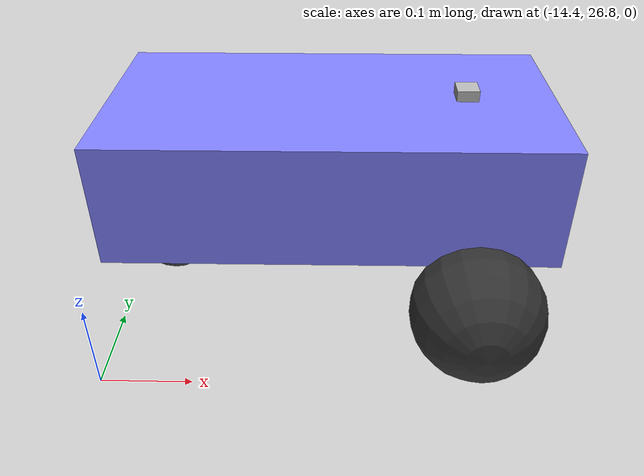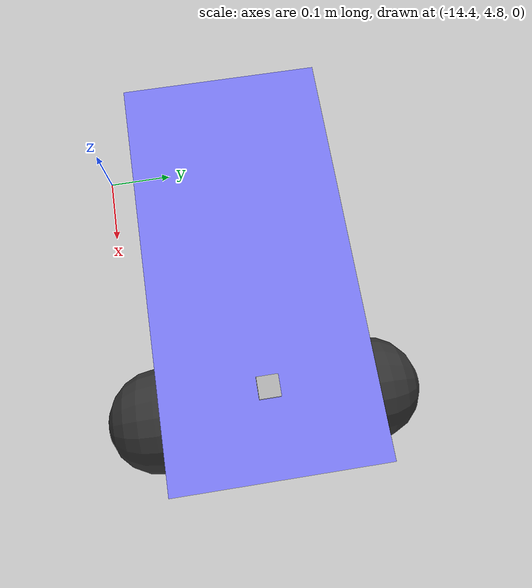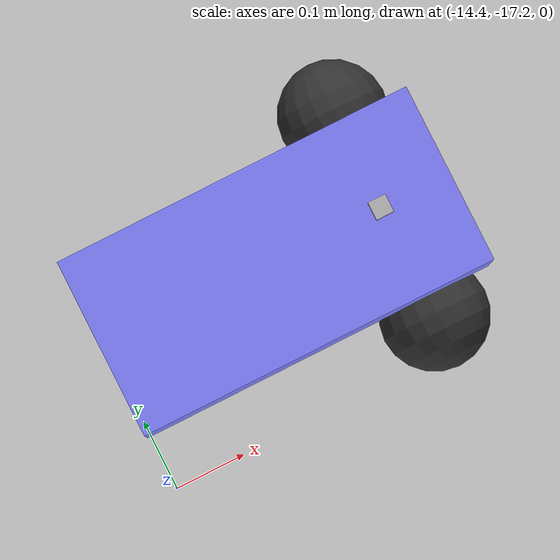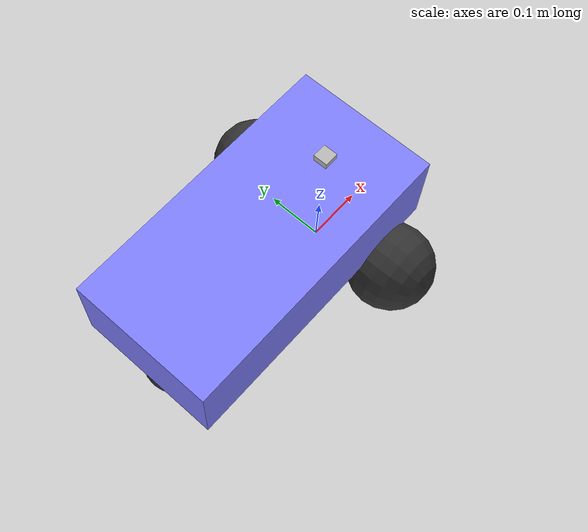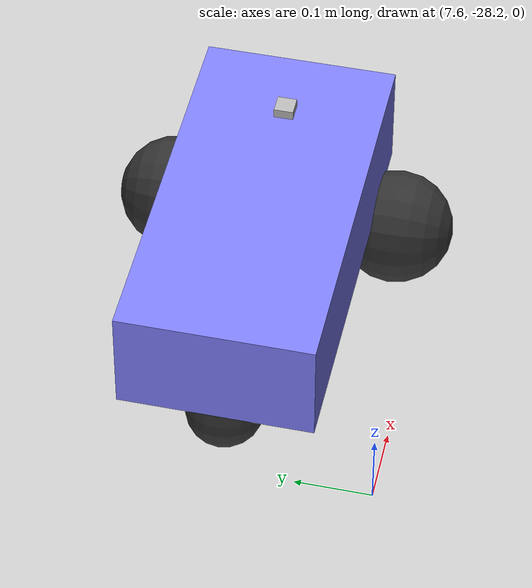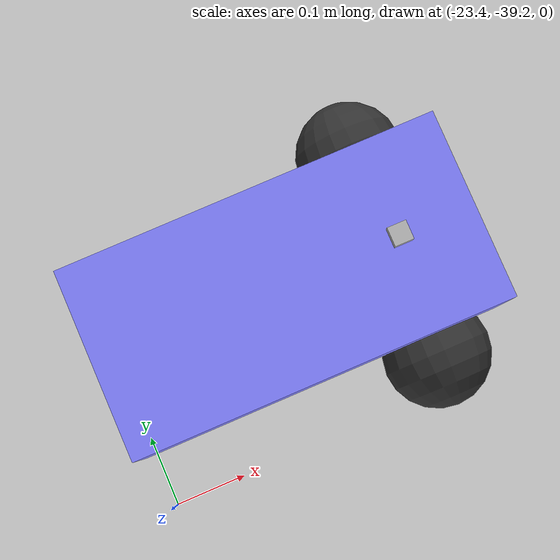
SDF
<sdf version="1.7">
 <world name="CMP_department">
  <physics name="1ms" type="ignored">
   <max_step_size>0.001</max_step_size>
   <real_time_factor>1.0</real_time_factor>
  </physics>
  <plugin filename="libignition-gazebo-physics-system.so" name="ignition::gazebo::systems::Physics"/>
  <plugin filename="libignition-gazebo-user-commands-system.so" name="ignition::gazebo::systems::UserCommands"/>
  <plugin filename="libignition-gazebo-scene-broadcaster-system.so" name="ignition::gazebo::systems::SceneBroadcaster"/>
  <plugin filename="libignition-gazebo-sensors-system.so" name="ignition::gazebo::systems::Sensors">
   <render_engine>ogre</render_engine>
  </plugin>
  <plugin filename="libignition-gazebo-contact-system.so" name="ignition::gazebo::systems::Contact"/>
  <scene>
   <ambient>1 1 1 1</ambient>
   <background>0.3 0.7 0.9 1</background>
   <shadows>0</shadows>
   <grid>false</grid>
  </scene>
  <light type="directional" name="sun">
   <cast_shadows>false</cast_shadows>
   <pose>0 0 100 0 0 0</pose>
   <diffuse>0.8 0.8 0.8 1</diffuse>
   <specular>0.2 0.2 0.2 1</specular>
   <attenuation>
    <range>1000</range>
    <constant>0.9</constant>
    <linear>0.01</linear>
    <quadratic>0.001</quadratic>
   </attenuation>
   <direction>-0.5 0.1 -0.9</direction>
  </light>
  <model name="ground_plane">
   <static>true</static>
   <link name="link">
    <collision name="collision"><geometry><plane><normal>0 0 1</normal></plane></geometry></collision>
    <visual name="visual">
     <geometry><plane><normal>0 0 1</normal><size>200 200</size></plane></geometry>
     <material>
      <ambient>0.8 0.8 0.8 1</ambient>
      <diffuse>0.8 0.8 0.8 1</diffuse>
      <specular>0.8 0.8 0.8 1</specular>
     </material>
    </visual>
   </link>
  </model>
  <include>
   <name>robots</name>
   <uri>./models/sub_worlds/robots.sdf</uri>
   <pose relative_to="maincorridor">0 0 0 0 0 0</pose>
  </include>
 </world>
</sdf>

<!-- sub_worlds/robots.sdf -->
<sdf version="1.6">

  <model name="robots">

    <!-- Corridor robot -->
    <include>
      <name>robot1</name>
      <uri>models/robots/robot1.sdf</uri>
      <pose>0 0 0 0 0 0 </pose>
    </include>
    <!-- Fourth year robot -->
    <include>
      <name>robot2</name>
      <uri>models/robots/robot2.sdf</uri>
      <pose>-14 27 0 0 0 0 </pose>
    </include>
    <!-- Third year robot -->
    <include>
      <name>robot3</name>
      <uri>models/robots/robot3.sdf</uri>
      <pose>-14 5 0 0 0 0 </pose>
    </include>
    <!-- Second year robot -->
    <include>
      <name>robot4</name>
      <uri>models/robots/robot4.sdf</uri>
      <pose>-14 -17 0 0 0 0 </pose>
    </include>
    <!-- First year robot -->
    <include>
      <name>robot5</name>
      <uri>models/robots/robot5.sdf</uri>
      <pose>-23 -39 0 0 0 0 </pose>
    </include>

    <include>
      <name>robot6</name>
      <uri>models/robots/robot6.sdf</uri>
      <pose>10 -44 0 0 0 0 </pose>
    </include>

    <include>
      <name>robot7</name>
      <uri>models/robots/robot7.sdf</uri>
      <pose>8 -28 0 0 0 0 </pose>
    </include>

    <include>
      <name>robot8</name>
      <uri>models/robots/robot8.sdf</uri>
      <pose>10 -10 0 0 0 0 </pose>
    </include>

    <include>
      <name>robot9</name>
      <uri>models/robots/robot9.sdf</uri>
      <pose>6 10 0 0 0 0 </pose>
    </include>

    <include>
      <name>robot10</name>
      <uri>models/robots/robot10.sdf</uri>
      <pose>8 20 0 0 0 0 </pose>
    </include>

  </model>
</sdf>

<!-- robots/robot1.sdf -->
<!--
  You can echo lidar messages using:
    gz topic -e -t /lidar
-->
<sdf version="1.9">
    <model name='robot1'>
      <pose>-4 0 0.325 0 0 0.0</pose>
      <link name='chassis'>
        <pose>-0.151427 -0 0.175 0 -0 0</pose>
        <inertial>
          <mass>1.14395</mass>
          <inertia>
            <ixx>0.126164</ixx>
            <ixy>0</ixy>
            <ixz>0</ixz>
            <iyy>0.416519</iyy>
            <iyz>0</iyz>
            <izz>0.481014</izz>
          </inertia>
        </inertial>
        <visual name='visual'>
          <geometry>
            <box>
              <size>0.503 0.25 0.143</size>
            </box>
          </geometry>
          <material>
            <ambient>0.5 0.5 1.0 1</ambient>
            <diffuse>0.5 0.5 1.0 1</diffuse>
            <specular>0.0 0.0 1.0 1</specular>
          </material>
        </visual>
        <collision name='collision'>
          <geometry>
            <box>
              <size>0.503 0.25 0.143</size>
            </box>
          </geometry>
        </collision>
      </link>

      <link name="lidar_link">
        <pose>0 0 0.2465 0 0 0</pose>
        <inertial>
          <mass>0.1</mass>
          <inertia>
            <ixx>0.000166667</ixx>
            <iyy>0.000166667</iyy>
            <izz>0.000166667</izz>
          </inertia>
        </inertial>
        <collision name="collision">
          <geometry>
            <box>
              <size>0.025 0.025 0.025</size>
            </box>
          </geometry>
        </collision>
        <visual name="visual">
          <geometry>
            <box>
              <size>0.025 0.025 0.025</size>
            </box>
          </geometry>
        </visual>
        <sensor name='gpu_lidar' type='gpu_lidar'>
        <pose>0 0 0 0 0 0</pose>
          <topic>/model/robot1/lidar2</topic>
          <update_rate>10</update_rate>
          <lidar>
            <scan>
              <horizontal>
                <samples>640</samples>
                <resolution>1</resolution>
                <min_angle>-1.396263</min_angle>
                <max_angle>1.396263</max_angle>
              </horizontal>
              <vertical>
                <samples>1</samples>
                <resolution>1</resolution>
                <min_angle>0.0</min_angle>
                <max_angle>0.0</max_angle>
              </vertical>
            </scan>
            <range>
              <min>0.08</min>
              <max>10.0</max>
              <resolution>0.01</resolution>
            </range>
          </lidar>
          <visualize>true</visualize>
        </sensor>
      </link>

      <link name='left_wheel'>
        <pose>0.01 0.15 0.06 -1.5707 0 0</pose>
        <inertial>
          <mass>2</mass>
          <inertia>
            <ixx>0.145833</ixx>
            <ixy>0</ixy>
            <ixz>0</ixz>
            <iyy>0.145833</iyy>
            <iyz>0</iyz>
            <izz>0.125</izz>
          </inertia>
        </inertial>
        <visual name='visual'>
          <geometry>
            <sphere>
              <radius>0.075</radius>
            </sphere>
          </geometry>
          <material>
            <ambient>0.2 0.2 0.2 1</ambient>
            <diffuse>0.2 0.2 0.2 1</diffuse>
            <specular>0.2 0.2 0.2 1</specular>
          </material>
        </visual>
        <collision name='collision'>
          <geometry>
            <sphere>
              <radius>0.075</radius>
            </sphere>
          </geometry>
        </collision>
      </link>

      <link name='right_wheel'>
        <pose>0.01 -0.15 0.06 -1.5707 0 0</pose>
        <inertial>
          <mass>2</mass>
          <inertia>
            <ixx>0.145833</ixx>
            <ixy>0</ixy>
            <ixz>0</ixz>
            <iyy>0.145833</iyy>
            <iyz>0</iyz>
            <izz>0.125</izz>
          </inertia>
        </inertial>
        <visual name='visual'>
          <geometry>
            <sphere>
              <radius>0.075</radius>
            </sphere>
          </geometry>
          <material>
            <ambient>0.2 0.2 0.2 1</ambient>
            <diffuse>0.2 0.2 0.2 1</diffuse>
            <specular>0.2 0.2 0.2 1</specular>
          </material>
        </visual>
        <collision name='collision'>
          <geometry>
            <sphere>
              <radius>0.075</radius>
            </sphere>
          </geometry>
        </collision>
      </link>

      <link name='caster'>
        <pose>-0.35 0 0.06 -1.5707 0 0 </pose>
        <inertial>
          <mass>1</mass>
          <inertia>
            <ixx>0.1</ixx>
            <ixy>0</ixy>
            <ixz>0</ixz>
            <iyy>0.1</iyy>
            <iyz>0</iyz>
            <izz>0.1</izz>
          </inertia>
        </inertial>
        <visual name='visual'>
          <geometry>
            <sphere>
              <radius>0.05</radius>
            </sphere>
          </geometry>
          <material>
            <ambient>0.2 0.2 0.2 1</ambient>
            <diffuse>0.2 0.2 0.2 1</diffuse>
            <specular>0.2 0.2 0.2 1</specular>
          </material>
        </visual>
        <collision name='collision'>
          <geometry>
            <sphere>
              <radius>0.05</radius>
            </sphere>
          </geometry>
        </collision>
      </link>

      <joint name='lidar_sensor_joint' type='fixed'>
        <parent>chassis</parent>
        <child>lidar_link</child>
      </joint>

      <joint name='left_wheel_joint' type='revolute'>
        <parent>chassis</parent>
        <child>left_wheel</child>
        <axis>
          <xyz>0 0 1</xyz>
          <limit>
            <lower>-1.79769e+308</lower>
            <upper>1.79769e+308</upper>
          </limit>
        </axis>
      </joint>

      <joint name='right_wheel_joint' type='revolute'>
        <parent>chassis</parent>
        <child>right_wheel</child>
        <axis>
          <xyz>0 0 1</xyz>
          <limit>
            <lower>-1.79769e+308</lower>
            <upper>1.79769e+308</upper>
          </limit>
        </axis>
      </joint>

      <joint name='caster_wheel' type='ball'>
        <parent>chassis</parent>
        <child>caster</child>
      </joint>

      <plugin
        filename="libignition-gazebo-diff-drive-system.so"
        name="ignition::gazebo::systems::DiffDrive">
        <left_joint>left_wheel_joint</left_joint>
        <right_joint>right_wheel_joint</right_joint>
        <wheel_separation>0.3</wheel_separation>
        <wheel_radius>0.075</wheel_radius>
        <odom_publish_frequency>1</odom_publish_frequency>
        <topic>/model/robot1/cmd_vel</topic>
      </plugin>
    </model>
</sdf>

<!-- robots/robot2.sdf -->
<!--
  You can echo lidar messages using:
    gz topic -e -t /lidar
-->
<sdf version="1.9">
    <model name='robot2'>
      <pose>-4 0 0.325 0 0 0.0</pose>
      <link name='chassis'>
        <pose>-0.151427 -0 0.175 0 -0 0</pose>
        <inertial>
          <mass>1.14395</mass>
          <inertia>
            <ixx>0.126164</ixx>
            <ixy>0</ixy>
            <ixz>0</ixz>
            <iyy>0.416519</iyy>
            <iyz>0</iyz>
            <izz>0.481014</izz>
          </inertia>
        </inertial>
        <visual name='visual'>
          <geometry>
            <box>
              <size>0.503 0.25 0.143</size>
            </box>
          </geometry>
          <material>
            <ambient>0.5 0.5 1.0 1</ambient>
            <diffuse>0.5 0.5 1.0 1</diffuse>
            <specular>0.0 0.0 1.0 1</specular>
          </material>
        </visual>
        <collision name='collision'>
          <geometry>
            <box>
              <size>0.503 0.25 0.143</size>
            </box>
          </geometry>
        </collision>
      </link>

      <link name="lidar_link">
        <pose>0 0 0.2465 0 0 0</pose>
        <inertial>
          <mass>0.1</mass>
          <inertia>
            <ixx>0.000166667</ixx>
            <iyy>0.000166667</iyy>
            <izz>0.000166667</izz>
          </inertia>
        </inertial>
        <collision name="collision">
          <geometry>
            <box>
              <size>0.025 0.025 0.025</size>
            </box>
          </geometry>
        </collision>
        <visual name="visual">
          <geometry>
            <box>
              <size>0.025 0.025 0.025</size>
            </box>
          </geometry>
        </visual>
        <sensor name='gpu_lidar' type='gpu_lidar'>
        <pose>0 0 0 0 0 0</pose>
          <topic>/model/robot2/lidar2</topic>
          <update_rate>10</update_rate>
          <lidar>
            <scan>
              <horizontal>
                <samples>640</samples>
                <resolution>1</resolution>
                <min_angle>-1.396263</min_angle>
                <max_angle>1.396263</max_angle>
              </horizontal>
              <vertical>
                <samples>1</samples>
                <resolution>1</resolution>
                <min_angle>0.0</min_angle>
                <max_angle>0.0</max_angle>
              </vertical>
            </scan>
            <range>
              <min>0.08</min>
              <max>10.0</max>
              <resolution>0.01</resolution>
            </range>
          </lidar>
          <visualize>true</visualize>
        </sensor>
      </link>

      <link name='left_wheel'>
        <pose>0.01 0.15 0.06 -1.5707 0 0</pose>
        <inertial>
          <mass>2</mass>
          <inertia>
            <ixx>0.145833</ixx>
            <ixy>0</ixy>
            <ixz>0</ixz>
            <iyy>0.145833</iyy>
            <iyz>0</iyz>
            <izz>0.125</izz>
          </inertia>
        </inertial>
        <visual name='visual'>
          <geometry>
            <sphere>
              <radius>0.075</radius>
            </sphere>
          </geometry>
          <material>
            <ambient>0.2 0.2 0.2 1</ambient>
            <diffuse>0.2 0.2 0.2 1</diffuse>
            <specular>0.2 0.2 0.2 1</specular>
          </material>
        </visual>
        <collision name='collision'>
          <geometry>
            <sphere>
              <radius>0.075</radius>
            </sphere>
          </geometry>
        </collision>
      </link>

      <link name='right_wheel'>
        <pose>0.01 -0.15 0.06 -1.5707 0 0</pose>
        <inertial>
          <mass>2</mass>
          <inertia>
            <ixx>0.145833</ixx>
            <ixy>0</ixy>
            <ixz>0</ixz>
            <iyy>0.145833</iyy>
            <iyz>0</iyz>
            <izz>0.125</izz>
          </inertia>
        </inertial>
        <visual name='visual'>
          <geometry>
            <sphere>
              <radius>0.075</radius>
            </sphere>
          </geometry>
          <material>
            <ambient>0.2 0.2 0.2 1</ambient>
            <diffuse>0.2 0.2 0.2 1</diffuse>
            <specular>0.2 0.2 0.2 1</specular>
          </material>
        </visual>
        <collision name='collision'>
          <geometry>
            <sphere>
              <radius>0.075</radius>
            </sphere>
          </geometry>
        </collision>
      </link>

      <link name='caster'>
        <pose>-0.35 0 0.06 -1.5707 0 0 </pose>
        <inertial>
          <mass>1</mass>
          <inertia>
            <ixx>0.1</ixx>
            <ixy>0</ixy>
            <ixz>0</ixz>
            <iyy>0.1</iyy>
            <iyz>0</iyz>
            <izz>0.1</izz>
          </inertia>
        </inertial>
        <visual name='visual'>
          <geometry>
            <sphere>
              <radius>0.05</radius>
            </sphere>
          </geometry>
          <material>
            <ambient>0.2 0.2 0.2 1</ambient>
            <diffuse>0.2 0.2 0.2 1</diffuse>
            <specular>0.2 0.2 0.2 1</specular>
          </material>
        </visual>
        <collision name='collision'>
          <geometry>
            <sphere>
              <radius>0.05</radius>
            </sphere>
          </geometry>
        </collision>
      </link>

      <joint name='lidar_sensor_joint' type='fixed'>
        <parent>chassis</parent>
        <child>lidar_link</child>
      </joint>

      <joint name='left_wheel_joint' type='revolute'>
        <parent>chassis</parent>
        <child>left_wheel</child>
        <axis>
          <xyz>0 0 1</xyz>
          <limit>
            <lower>-1.79769e+308</lower>
            <upper>1.79769e+308</upper>
          </limit>
        </axis>
      </joint>

      <joint name='right_wheel_joint' type='revolute'>
        <parent>chassis</parent>
        <child>right_wheel</child>
        <axis>
          <xyz>0 0 1</xyz>
          <limit>
            <lower>-1.79769e+308</lower>
            <upper>1.79769e+308</upper>
          </limit>
        </axis>
      </joint>

      <joint name='caster_wheel' type='ball'>
        <parent>chassis</parent>
        <child>caster</child>
      </joint>

      <plugin
        filename="libignition-gazebo-diff-drive-system.so"
        name="ignition::gazebo::systems::DiffDrive">
        <left_joint>left_wheel_joint</left_joint>
        <right_joint>right_wheel_joint</right_joint>
        <wheel_separation>0.3</wheel_separation>
        <wheel_radius>0.075</wheel_radius>
        <odom_publish_frequency>1</odom_publish_frequency>
        <topic>/model/robot2/cmd_vel</topic>
      </plugin>
    </model>
</sdf>

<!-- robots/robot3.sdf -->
<!--
  You can echo lidar messages using:
    gz topic -e -t /lidar
-->
<sdf version="1.9">
    <model name='robot3'>
      <pose>-4 0 0.325 0 0 0.0</pose>
      <link name='chassis'>
        <pose>-0.151427 -0 0.175 0 -0 0</pose>
        <inertial>
          <mass>1.14395</mass>
          <inertia>
            <ixx>0.126164</ixx>
            <ixy>0</ixy>
            <ixz>0</ixz>
            <iyy>0.416519</iyy>
            <iyz>0</iyz>
            <izz>0.481014</izz>
          </inertia>
        </inertial>
        <visual name='visual'>
          <geometry>
            <box>
              <size>0.503 0.25 0.143</size>
            </box>
          </geometry>
          <material>
            <ambient>0.5 0.5 1.0 1</ambient>
            <diffuse>0.5 0.5 1.0 1</diffuse>
            <specular>0.0 0.0 1.0 1</specular>
          </material>
        </visual>
        <collision name='collision'>
          <geometry>
            <box>
              <size>0.503 0.25 0.143</size>
            </box>
          </geometry>
        </collision>
      </link>

      <link name="lidar_link">
        <pose>0 0 0.2465 0 0 0</pose>
        <inertial>
          <mass>0.1</mass>
          <inertia>
            <ixx>0.000166667</ixx>
            <iyy>0.000166667</iyy>
            <izz>0.000166667</izz>
          </inertia>
        </inertial>
        <collision name="collision">
          <geometry>
            <box>
              <size>0.025 0.025 0.025</size>
            </box>
          </geometry>
        </collision>
        <visual name="visual">
          <geometry>
            <box>
              <size>0.025 0.025 0.025</size>
            </box>
          </geometry>
        </visual>
        <sensor name='gpu_lidar' type='gpu_lidar'>
        <pose>0 0 0 0 0 0</pose>
          <topic>/model/robot3/lidar2</topic>
          <update_rate>10</update_rate>
          <lidar>
            <scan>
              <horizontal>
                <samples>640</samples>
                <resolution>1</resolution>
                <min_angle>-1.396263</min_angle>
                <max_angle>1.396263</max_angle>
              </horizontal>
              <vertical>
                <samples>1</samples>
                <resolution>1</resolution>
                <min_angle>0.0</min_angle>
                <max_angle>0.0</max_angle>
              </vertical>
              <!-- add guassian noise-->
              <noise>
                <type>gaussian</type>
                <mean>0.0</mean>
                <stddev>0.01</stddev>
              </noise>
            </scan>
            <range>
              <min>0.08</min>
              <max>10.0</max>
              <resolution>0.01</resolution>
            </range>
          </lidar>
          <always_on>1</always_on>
          <visualize>true</visualize>
        </sensor>
      </link>

      <link name='left_wheel'>
        <pose>0.01 0.15 0.06 -1.5707 0 0</pose>
        <inertial>
          <mass>2</mass>
          <inertia>
            <ixx>0.145833</ixx>
            <ixy>0</ixy>
            <ixz>0</ixz>
            <iyy>0.145833</iyy>
            <iyz>0</iyz>
            <izz>0.125</izz>
          </inertia>
        </inertial>
        <visual name='visual'>
          <geometry>
            <sphere>
              <radius>0.075</radius>
            </sphere>
          </geometry>
          <material>
            <ambient>0.2 0.2 0.2 1</ambient>
            <diffuse>0.2 0.2 0.2 1</diffuse>
            <specular>0.2 0.2 0.2 1</specular>
          </material>
        </visual>
        <collision name='collision'>
          <geometry>
            <sphere>
              <radius>0.075</radius>
            </sphere>
          </geometry>
        </collision>
      </link>

      <link name='right_wheel'>
        <pose>0.01 -0.15 0.06 -1.5707 0 0</pose>
        <inertial>
          <mass>2</mass>
          <inertia>
            <ixx>0.145833</ixx>
            <ixy>0</ixy>
            <ixz>0</ixz>
            <iyy>0.145833</iyy>
            <iyz>0</iyz>
            <izz>0.125</izz>
          </inertia>
        </inertial>
        <visual name='visual'>
          <geometry>
            <sphere>
              <radius>0.075</radius>
            </sphere>
          </geometry>
          <material>
            <ambient>0.2 0.2 0.2 1</ambient>
            <diffuse>0.2 0.2 0.2 1</diffuse>
            <specular>0.2 0.2 0.2 1</specular>
          </material>
        </visual>
        <collision name='collision'>
          <geometry>
            <sphere>
              <radius>0.075</radius>
            </sphere>
          </geometry>
        </collision>
      </link>

      <link name='caster'>
        <pose>-0.35 0 0.06 -1.5707 0 0 </pose>
        <inertial>
          <mass>1</mass>
          <inertia>
            <ixx>0.1</ixx>
            <ixy>0</ixy>
            <ixz>0</ixz>
            <iyy>0.1</iyy>
            <iyz>0</iyz>
            <izz>0.1</izz>
          </inertia>
        </inertial>
        <visual name='visual'>
          <geometry>
            <sphere>
              <radius>0.05</radius>
            </sphere>
          </geometry>
          <material>
            <ambient>0.2 0.2 0.2 1</ambient>
            <diffuse>0.2 0.2 0.2 1</diffuse>
            <specular>0.2 0.2 0.2 1</specular>
          </material>
        </visual>
        <collision name='collision'>
          <geometry>
            <sphere>
              <radius>0.05</radius>
            </sphere>
          </geometry>
        </collision>
      </link>

      <joint name='lidar_sensor_joint' type='fixed'>
        <parent>chassis</parent>
        <child>lidar_link</child>
      </joint>

      <joint name='left_wheel_joint' type='revolute'>
        <parent>chassis</parent>
        <child>left_wheel</child>
        <axis>
          <xyz>0 0 1</xyz>
          <limit>
            <lower>-1.79769e+308</lower>
            <upper>1.79769e+308</upper>
          </limit>
        </axis>
      </joint>

      <joint name='right_wheel_joint' type='revolute'>
        <parent>chassis</parent>
        <child>right_wheel</child>
        <axis>
          <xyz>0 0 1</xyz>
          <limit>
            <lower>-1.79769e+308</lower>
            <upper>1.79769e+308</upper>
          </limit>
        </axis>
      </joint>

      <joint name='caster_wheel' type='ball'>
        <parent>chassis</parent>
        <child>caster</child>
      </joint>

      <plugin
        filename="libignition-gazebo-diff-drive-system.so"
        name="ignition::gazebo::systems::DiffDrive">
        <left_joint>left_wheel_joint</left_joint>
        <right_joint>right_wheel_joint</right_joint>
        <wheel_separation>0.3</wheel_separation>
        <wheel_radius>0.075</wheel_radius>
        <odom_publish_frequency>1</odom_publish_frequency>
        <topic>/model/robot3/cmd_vel</topic>
      </plugin>
    </model>
</sdf>

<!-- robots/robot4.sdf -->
<!--
  You can echo lidar messages using:
    gz topic -e -t /lidar
-->
<sdf version="1.9">
    <model name='robot4'>
      <pose>-4 0 0.325 0 0 0.0</pose>
      <link name='chassis'>
        <pose>-0.151427 -0 0.175 0 -0 0</pose>
        <inertial>
          <mass>1.14395</mass>
          <inertia>
            <ixx>0.126164</ixx>
            <ixy>0</ixy>
            <ixz>0</ixz>
            <iyy>0.416519</iyy>
            <iyz>0</iyz>
            <izz>0.481014</izz>
          </inertia>
        </inertial>
        <visual name='visual'>
          <geometry>
            <box>
              <size>0.503 0.25 0.143</size>
            </box>
          </geometry>
          <material>
            <ambient>0.5 0.5 1.0 1</ambient>
            <diffuse>0.5 0.5 1.0 1</diffuse>
            <specular>0.0 0.0 1.0 1</specular>
          </material>
        </visual>
        <collision name='collision'>
          <geometry>
            <box>
              <size>0.503 0.25 0.143</size>
            </box>
          </geometry>
        </collision>
      </link>

      <link name="lidar_link">
        <pose>0 0 0.2465 0 0 0</pose>
        <inertial>
          <mass>0.1</mass>
          <inertia>
            <ixx>0.000166667</ixx>
            <iyy>0.000166667</iyy>
            <izz>0.000166667</izz>
          </inertia>
        </inertial>
        <collision name="collision">
          <geometry>
            <box>
              <size>0.025 0.025 0.025</size>
            </box>
          </geometry>
        </collision>
        <visual name="visual">
          <geometry>
            <box>
              <size>0.025 0.025 0.025</size>
            </box>
          </geometry>
        </visual>
        <sensor name='gpu_lidar' type='gpu_lidar'>
        <pose>0 0 0 0 0 0</pose>
          <topic>/model/robot4/lidar2</topic>
          <update_rate>10</update_rate>
          <lidar>
            <scan>
              <horizontal>
                <samples>640</samples>
                <resolution>1</resolution>
                <min_angle>-1.396263</min_angle>
                <max_angle>1.396263</max_angle>
              </horizontal>
              <vertical>
                <samples>1</samples>
                <resolution>1</resolution>
                <min_angle>0.0</min_angle>
                <max_angle>0.0</max_angle>
              </vertical>
              <!-- add guassian noise-->
              <noise>
                <type>gaussian</type>
                <mean>0.0</mean>
                <stddev>0.01</stddev>
              </noise>
            </scan>
            <range>
              <min>0.08</min>
              <max>10.0</max>
              <resolution>0.01</resolution>
            </range>
          </lidar>
          <always_on>1</always_on>
          <visualize>true</visualize>
        </sensor>
      </link>

      <link name='left_wheel'>
        <pose>0.01 0.15 0.06 -1.5707 0 0</pose>
        <inertial>
          <mass>2</mass>
          <inertia>
            <ixx>0.145833</ixx>
            <ixy>0</ixy>
            <ixz>0</ixz>
            <iyy>0.145833</iyy>
            <iyz>0</iyz>
            <izz>0.125</izz>
          </inertia>
        </inertial>
        <visual name='visual'>
          <geometry>
            <sphere>
              <radius>0.075</radius>
            </sphere>
          </geometry>
          <material>
            <ambient>0.2 0.2 0.2 1</ambient>
            <diffuse>0.2 0.2 0.2 1</diffuse>
            <specular>0.2 0.2 0.2 1</specular>
          </material>
        </visual>
        <collision name='collision'>
          <geometry>
            <sphere>
              <radius>0.075</radius>
            </sphere>
          </geometry>
        </collision>
      </link>

      <link name='right_wheel'>
        <pose>0.01 -0.15 0.06 -1.5707 0 0</pose>
        <inertial>
          <mass>2</mass>
          <inertia>
            <ixx>0.145833</ixx>
            <ixy>0</ixy>
            <ixz>0</ixz>
            <iyy>0.145833</iyy>
            <iyz>0</iyz>
            <izz>0.125</izz>
          </inertia>
        </inertial>
        <visual name='visual'>
          <geometry>
            <sphere>
              <radius>0.075</radius>
            </sphere>
          </geometry>
          <material>
            <ambient>0.2 0.2 0.2 1</ambient>
            <diffuse>0.2 0.2 0.2 1</diffuse>
            <specular>0.2 0.2 0.2 1</specular>
          </material>
        </visual>
        <collision name='collision'>
          <geometry>
            <sphere>
              <radius>0.075</radius>
            </sphere>
          </geometry>
        </collision>
      </link>

      <link name='caster'>
        <pose>-0.35 0 0.06 -1.5707 0 0 </pose>
        <inertial>
          <mass>1</mass>
          <inertia>
            <ixx>0.1</ixx>
            <ixy>0</ixy>
            <ixz>0</ixz>
            <iyy>0.1</iyy>
            <iyz>0</iyz>
            <izz>0.1</izz>
          </inertia>
        </inertial>
        <visual name='visual'>
          <geometry>
            <sphere>
              <radius>0.05</radius>
            </sphere>
          </geometry>
          <material>
            <ambient>0.2 0.2 0.2 1</ambient>
            <diffuse>0.2 0.2 0.2 1</diffuse>
            <specular>0.2 0.2 0.2 1</specular>
          </material>
        </visual>
        <collision name='collision'>
          <geometry>
            <sphere>
              <radius>0.05</radius>
            </sphere>
          </geometry>
        </collision>
      </link>

      <joint name='lidar_sensor_joint' type='fixed'>
        <parent>chassis</parent>
        <child>lidar_link</child>
      </joint>

      <joint name='left_wheel_joint' type='revolute'>
        <parent>chassis</parent>
        <child>left_wheel</child>
        <axis>
          <xyz>0 0 1</xyz>
          <limit>
            <lower>-1.79769e+308</lower>
            <upper>1.79769e+308</upper>
          </limit>
        </axis>
      </joint>

      <joint name='right_wheel_joint' type='revolute'>
        <parent>chassis</parent>
        <child>right_wheel</child>
        <axis>
          <xyz>0 0 1</xyz>
          <limit>
            <lower>-1.79769e+308</lower>
            <upper>1.79769e+308</upper>
          </limit>
        </axis>
      </joint>

      <joint name='caster_wheel' type='ball'>
        <parent>chassis</parent>
        <child>caster</child>
      </joint>

      <plugin
        filename="libignition-gazebo-diff-drive-system.so"
        name="ignition::gazebo::systems::DiffDrive">
        <left_joint>left_wheel_joint</left_joint>
        <right_joint>right_wheel_joint</right_joint>
        <wheel_separation>0.3</wheel_separation>
        <wheel_radius>0.075</wheel_radius>
        <odom_publish_frequency>1</odom_publish_frequency>
        <topic>/model/robot4/cmd_vel</topic>
      </plugin>
    </model>
</sdf>

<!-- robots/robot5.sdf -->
<!--
  You can echo lidar messages using:
    gz topic -e -t /lidar
-->
<sdf version="1.9">
    <model name='robot5'>
      <pose>-4 0 0.325 0 0 0.0</pose>
      <link name='chassis'>
        <pose>-0.151427 -0 0.175 0 -0 0</pose>
        <inertial>
          <mass>1.14395</mass>
          <inertia>
            <ixx>0.126164</ixx>
            <ixy>0</ixy>
            <ixz>0</ixz>
            <iyy>0.416519</iyy>
            <iyz>0</iyz>
            <izz>0.481014</izz>
          </inertia>
        </inertial>
        <visual name='visual'>
          <geometry>
            <box>
              <size>0.503 0.25 0.143</size>
            </box>
          </geometry>
          <material>
            <ambient>0.5 0.5 1.0 1</ambient>
            <diffuse>0.5 0.5 1.0 1</diffuse>
            <specular>0.0 0.0 1.0 1</specular>
          </material>
        </visual>
        <collision name='collision'>
          <geometry>
            <box>
              <size>0.503 0.25 0.143</size>
            </box>
          </geometry>
        </collision>
      </link>

      <link name="lidar_link">
        <pose>0 0 0.2465 0 0 0</pose>
        <inertial>
          <mass>0.1</mass>
          <inertia>
            <ixx>0.000166667</ixx>
            <iyy>0.000166667</iyy>
            <izz>0.000166667</izz>
          </inertia>
        </inertial>
        <collision name="collision">
          <geometry>
            <box>
              <size>0.025 0.025 0.025</size>
            </box>
          </geometry>
        </collision>
        <visual name="visual">
          <geometry>
            <box>
              <size>0.025 0.025 0.025</size>
            </box>
          </geometry>
        </visual>
        <sensor name='gpu_lidar' type='gpu_lidar'>
        <pose>0 0 0 0 0 0</pose>
          <topic>/model/robot5/lidar2</topic>
          <update_rate>10</update_rate>
          <lidar>
            <scan>
              <horizontal>
                <samples>640</samples>
                <resolution>1</resolution>
                <min_angle>-1.396263</min_angle>
                <max_angle>1.396263</max_angle>
              </horizontal>
              <vertical>
                <samples>1</samples>
                <resolution>1</resolution>
                <min_angle>0.0</min_angle>
                <max_angle>0.0</max_angle>
              </vertical>
            </scan>
            <range>
              <min>0.08</min>
              <max>10.0</max>
              <resolution>0.01</resolution>
            </range>
          </lidar>
          <visualize>true</visualize>
        </sensor>
      </link>

      <link name='left_wheel'>
        <pose>0.01 0.15 0.06 -1.5707 0 0</pose>
        <inertial>
          <mass>2</mass>
          <inertia>
            <ixx>0.145833</ixx>
            <ixy>0</ixy>
            <ixz>0</ixz>
            <iyy>0.145833</iyy>
            <iyz>0</iyz>
            <izz>0.125</izz>
          </inertia>
        </inertial>
        <visual name='visual'>
          <geometry>
            <sphere>
              <radius>0.075</radius>
            </sphere>
          </geometry>
          <material>
            <ambient>0.2 0.2 0.2 1</ambient>
            <diffuse>0.2 0.2 0.2 1</diffuse>
            <specular>0.2 0.2 0.2 1</specular>
          </material>
        </visual>
        <collision name='collision'>
          <geometry>
            <sphere>
              <radius>0.075</radius>
            </sphere>
          </geometry>
        </collision>
      </link>

      <link name='right_wheel'>
        <pose>0.01 -0.15 0.06 -1.5707 0 0</pose>
        <inertial>
          <mass>2</mass>
          <inertia>
            <ixx>0.145833</ixx>
            <ixy>0</ixy>
            <ixz>0</ixz>
            <iyy>0.145833</iyy>
            <iyz>0</iyz>
            <izz>0.125</izz>
          </inertia>
        </inertial>
        <visual name='visual'>
          <geometry>
            <sphere>
              <radius>0.075</radius>
            </sphere>
          </geometry>
          <material>
            <ambient>0.2 0.2 0.2 1</ambient>
            <diffuse>0.2 0.2 0.2 1</diffuse>
            <specular>0.2 0.2 0.2 1</specular>
          </material>
        </visual>
        <collision name='collision'>
          <geometry>
            <sphere>
              <radius>0.075</radius>
            </sphere>
          </geometry>
        </collision>
      </link>

      <link name='caster'>
        <pose>-0.35 0 0.06 -1.5707 0 0 </pose>
        <inertial>
          <mass>1</mass>
          <inertia>
            <ixx>0.1</ixx>
            <ixy>0</ixy>
            <ixz>0</ixz>
            <iyy>0.1</iyy>
            <iyz>0</iyz>
            <izz>0.1</izz>
          </inertia>
        </inertial>
        <visual name='visual'>
          <geometry>
            <sphere>
              <radius>0.05</radius>
            </sphere>
          </geometry>
          <material>
            <ambient>0.2 0.2 0.2 1</ambient>
            <diffuse>0.2 0.2 0.2 1</diffuse>
            <specular>0.2 0.2 0.2 1</specular>
          </material>
        </visual>
        <collision name='collision'>
          <geometry>
            <sphere>
              <radius>0.05</radius>
            </sphere>
          </geometry>
        </collision>
      </link>

      <joint name='lidar_sensor_joint' type='fixed'>
        <parent>chassis</parent>
        <child>lidar_link</child>
      </joint>

      <joint name='left_wheel_joint' type='revolute'>
        <parent>chassis</parent>
        <child>left_wheel</child>
        <axis>
          <xyz>0 0 1</xyz>
          <limit>
            <lower>-1.79769e+308</lower>
            <upper>1.79769e+308</upper>
          </limit>
        </axis>
      </joint>

      <joint name='right_wheel_joint' type='revolute'>
        <parent>chassis</parent>
        <child>right_wheel</child>
        <axis>
          <xyz>0 0 1</xyz>
          <limit>
            <lower>-1.79769e+308</lower>
            <upper>1.79769e+308</upper>
          </limit>
        </axis>
      </joint>

      <joint name='caster_wheel' type='ball'>
        <parent>chassis</parent>
        <child>caster</child>
      </joint>

      <plugin
        filename="libignition-gazebo-diff-drive-system.so"
        name="ignition::gazebo::systems::DiffDrive">
        <left_joint>left_wheel_joint</left_joint>
        <right_joint>right_wheel_joint</right_joint>
        <wheel_separation>0.3</wheel_separation>
        <wheel_radius>0.075</wheel_radius>
        <odom_publish_frequency>1</odom_publish_frequency>
        <topic>/model/robot5/cmd_vel</topic>
      </plugin>
    </model>
</sdf>

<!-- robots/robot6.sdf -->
<!--
  You can echo lidar messages using:
    gz topic -e -t /lidar
-->
<sdf version="1.9">
    <model name='robot6'>
      <pose>-4 0 0.325 0 0 0.0</pose>
      <link name='chassis'>
        <pose>-0.151427 -0 0.175 0 -0 0</pose>
        <inertial>
          <mass>1.14395</mass>
          <inertia>
            <ixx>0.126164</ixx>
            <ixy>0</ixy>
            <ixz>0</ixz>
            <iyy>0.416519</iyy>
            <iyz>0</iyz>
            <izz>0.481014</izz>
          </inertia>
        </inertial>
        <visual name='visual'>
          <geometry>
            <box>
              <size>0.503 0.25 0.143</size>
            </box>
          </geometry>
          <material>
            <ambient>0.5 0.5 1.0 1</ambient>
            <diffuse>0.5 0.5 1.0 1</diffuse>
            <specular>0.0 0.0 1.0 1</specular>
          </material>
        </visual>
        <collision name='collision'>
          <geometry>
            <box>
              <size>0.503 0.25 0.143</size>
            </box>
          </geometry>
        </collision>
      </link>

      <link name="lidar_link">
        <pose>0 0 0.2465 0 0 0</pose>
        <inertial>
          <mass>0.1</mass>
          <inertia>
            <ixx>0.000166667</ixx>
            <iyy>0.000166667</iyy>
            <izz>0.000166667</izz>
          </inertia>
        </inertial>
        <collision name="collision">
          <geometry>
            <box>
              <size>0.025 0.025 0.025</size>
            </box>
          </geometry>
        </collision>
        <visual name="visual">
          <geometry>
            <box>
              <size>0.025 0.025 0.025</size>
            </box>
          </geometry>
        </visual>
        <sensor name='gpu_lidar' type='gpu_lidar'>
        <pose>0 0 0 0 0 0</pose>
          <topic>/model/robot6/lidar2</topic>
          <update_rate>10</update_rate>
          <lidar>
            <scan>
              <horizontal>
                <samples>640</samples>
                <resolution>1</resolution>
                <min_angle>-1.396263</min_angle>
                <max_angle>1.396263</max_angle>
              </horizontal>
              <vertical>
                <samples>1</samples>
                <resolution>1</resolution>
                <min_angle>0.0</min_angle>
                <max_angle>0.0</max_angle>
              </vertical>
              <noise>
                <type>gaussian</type>
                <mean>0.0</mean>
                <stddev>0.01</stddev>
              </noise>
            </scan>
            <range>
              <min>0.08</min>
              <max>10.0</max>
              <resolution>0.01</resolution>
            </range>
          </lidar>
          <always_on>1</always_on>
          <visualize>true</visualize>
        </sensor>
      </link>

      <link name='left_wheel'>
        <pose>0.01 0.15 0.06 -1.5707 0 0</pose>
        <inertial>
          <mass>2</mass>
          <inertia>
            <ixx>0.145833</ixx>
            <ixy>0</ixy>
            <ixz>0</ixz>
            <iyy>0.145833</iyy>
            <iyz>0</iyz>
            <izz>0.125</izz>
          </inertia>
        </inertial>
        <visual name='visual'>
          <geometry>
            <sphere>
              <radius>0.075</radius>
            </sphere>
          </geometry>
          <material>
            <ambient>0.2 0.2 0.2 1</ambient>
            <diffuse>0.2 0.2 0.2 1</diffuse>
            <specular>0.2 0.2 0.2 1</specular>
          </material>
        </visual>
        <collision name='collision'>
          <geometry>
            <sphere>
              <radius>0.075</radius>
            </sphere>
          </geometry>
        </collision>
      </link>

      <link name='right_wheel'>
        <pose>0.01 -0.15 0.06 -1.5707 0 0</pose>
        <inertial>
          <mass>2</mass>
          <inertia>
            <ixx>0.145833</ixx>
            <ixy>0</ixy>
            <ixz>0</ixz>
            <iyy>0.145833</iyy>
            <iyz>0</iyz>
            <izz>0.125</izz>
          </inertia>
        </inertial>
        <visual name='visual'>
          <geometry>
            <sphere>
              <radius>0.075</radius>
            </sphere>
          </geometry>
          <material>
            <ambient>0.2 0.2 0.2 1</ambient>
            <diffuse>0.2 0.2 0.2 1</diffuse>
            <specular>0.2 0.2 0.2 1</specular>
          </material>
        </visual>
        <collision name='collision'>
          <geometry>
            <sphere>
              <radius>0.075</radius>
            </sphere>
          </geometry>
        </collision>
      </link>

      <link name='caster'>
        <pose>-0.35 0 0.06 -1.5707 0 0 </pose>
        <inertial>
          <mass>1</mass>
          <inertia>
            <ixx>0.1</ixx>
            <ixy>0</ixy>
            <ixz>0</ixz>
            <iyy>0.1</iyy>
            <iyz>0</iyz>
            <izz>0.1</izz>
          </inertia>
        </inertial>
        <visual name='visual'>
          <geometry>
            <sphere>
              <radius>0.05</radius>
            </sphere>
          </geometry>
          <material>
            <ambient>0.2 0.2 0.2 1</ambient>
            <diffuse>0.2 0.2 0.2 1</diffuse>
            <specular>0.2 0.2 0.2 1</specular>
          </material>
        </visual>
        <collision name='collision'>
          <geometry>
            <sphere>
              <radius>0.05</radius>
            </sphere>
          </geometry>
        </collision>
      </link>

      <joint name='lidar_sensor_joint' type='fixed'>
        <parent>chassis</parent>
        <child>lidar_link</child>
      </joint>

      <joint name='left_wheel_joint' type='revolute'>
        <parent>chassis</parent>
        <child>left_wheel</child>
        <axis>
          <xyz>0 0 1</xyz>
          <limit>
            <lower>-1.79769e+308</lower>
            <upper>1.79769e+308</upper>
          </limit>
        </axis>
      </joint>

      <joint name='right_wheel_joint' type='revolute'>
        <parent>chassis</parent>
        <child>right_wheel</child>
        <axis>
          <xyz>0 0 1</xyz>
          <limit>
            <lower>-1.79769e+308</lower>
            <upper>1.79769e+308</upper>
          </limit>
        </axis>
      </joint>

      <joint name='caster_wheel' type='ball'>
        <parent>chassis</parent>
        <child>caster</child>
      </joint>

      <plugin
        filename="libignition-gazebo-diff-drive-system.so"
        name="ignition::gazebo::systems::DiffDrive">
        <left_joint>left_wheel_joint</left_joint>
        <right_joint>right_wheel_joint</right_joint>
        <wheel_separation>0.3</wheel_separation>
        <wheel_radius>0.075</wheel_radius>
        <odom_publish_frequency>1</odom_publish_frequency>
        <topic>/model/robot6/cmd_vel</topic>
      </plugin>
    </model>
</sdf>

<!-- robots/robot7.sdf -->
<!--
  You can echo lidar messages using:
    gz topic -e -t /lidar
-->
<sdf version="1.9">
    <model name='robot7'>
      <pose>-4 0 0.325 0 0 0.0</pose>
      <link name='chassis'>
        <pose>-0.151427 -0 0.175 0 -0 0</pose>
        <inertial>
          <mass>1.14395</mass>
          <inertia>
            <ixx>0.126164</ixx>
            <ixy>0</ixy>
            <ixz>0</ixz>
            <iyy>0.416519</iyy>
            <iyz>0</iyz>
            <izz>0.481014</izz>
          </inertia>
        </inertial>
        <visual name='visual'>
          <geometry>
            <box>
              <size>0.503 0.25 0.143</size>
            </box>
          </geometry>
          <material>
            <ambient>0.5 0.5 1.0 1</ambient>
            <diffuse>0.5 0.5 1.0 1</diffuse>
            <specular>0.0 0.0 1.0 1</specular>
          </material>
        </visual>
        <collision name='collision'>
          <geometry>
            <box>
              <size>0.503 0.25 0.143</size>
            </box>
          </geometry>
        </collision>
      </link>

      <link name="lidar_link">
        <pose>0 0 0.2465 0 0 0</pose>
        <inertial>
          <mass>0.1</mass>
          <inertia>
            <ixx>0.000166667</ixx>
            <iyy>0.000166667</iyy>
            <izz>0.000166667</izz>
          </inertia>
        </inertial>
        <collision name="collision">
          <geometry>
            <box>
              <size>0.025 0.025 0.025</size>
            </box>
          </geometry>
        </collision>
        <visual name="visual">
          <geometry>
            <box>
              <size>0.025 0.025 0.025</size>
            </box>
          </geometry>
        </visual>
        <sensor name='gpu_lidar' type='gpu_lidar'>
        <pose>0 0 0 0 0 0</pose>
          <topic>/model/robot7/lidar2</topic>
          <update_rate>10</update_rate>
          <lidar>
            <scan>
              <horizontal>
                <samples>640</samples>
                <resolution>1</resolution>
                <min_angle>-1.396263</min_angle>
                <max_angle>1.396263</max_angle>
              </horizontal>
              <vertical>
                <samples>1</samples>
                <resolution>1</resolution>
                <min_angle>0.0</min_angle>
                <max_angle>0.0</max_angle>
              </vertical>
              <noise>
                <type>gaussian</type>
                <mean>0.0</mean>
                <stddev>0.01</stddev>
              </noise>
            </scan>
            <range>
              <min>0.08</min>
              <max>10.0</max>
              <resolution>0.01</resolution>
            </range>
          </lidar>
          <always_on>1</always_on>
          <visualize>true</visualize>
        </sensor>
      </link>

      <link name='left_wheel'>
        <pose>0.01 0.15 0.06 -1.5707 0 0</pose>
        <inertial>
          <mass>2</mass>
          <inertia>
            <ixx>0.145833</ixx>
            <ixy>0</ixy>
            <ixz>0</ixz>
            <iyy>0.145833</iyy>
            <iyz>0</iyz>
            <izz>0.125</izz>
          </inertia>
        </inertial>
        <visual name='visual'>
          <geometry>
            <sphere>
              <radius>0.075</radius>
            </sphere>
          </geometry>
          <material>
            <ambient>0.2 0.2 0.2 1</ambient>
            <diffuse>0.2 0.2 0.2 1</diffuse>
            <specular>0.2 0.2 0.2 1</specular>
          </material>
        </visual>
        <collision name='collision'>
          <geometry>
            <sphere>
              <radius>0.075</radius>
            </sphere>
          </geometry>
        </collision>
      </link>

      <link name='right_wheel'>
        <pose>0.01 -0.15 0.06 -1.5707 0 0</pose>
        <inertial>
          <mass>2</mass>
          <inertia>
            <ixx>0.145833</ixx>
            <ixy>0</ixy>
            <ixz>0</ixz>
            <iyy>0.145833</iyy>
            <iyz>0</iyz>
            <izz>0.125</izz>
          </inertia>
        </inertial>
        <visual name='visual'>
          <geometry>
            <sphere>
              <radius>0.075</radius>
            </sphere>
          </geometry>
          <material>
            <ambient>0.2 0.2 0.2 1</ambient>
            <diffuse>0.2 0.2 0.2 1</diffuse>
            <specular>0.2 0.2 0.2 1</specular>
          </material>
        </visual>
        <collision name='collision'>
          <geometry>
            <sphere>
              <radius>0.075</radius>
            </sphere>
          </geometry>
        </collision>
      </link>

      <link name='caster'>
        <pose>-0.35 0 0.06 -1.5707 0 0 </pose>
        <inertial>
          <mass>1</mass>
          <inertia>
            <ixx>0.1</ixx>
            <ixy>0</ixy>
            <ixz>0</ixz>
            <iyy>0.1</iyy>
            <iyz>0</iyz>
            <izz>0.1</izz>
          </inertia>
        </inertial>
        <visual name='visual'>
          <geometry>
            <sphere>
              <radius>0.05</radius>
            </sphere>
          </geometry>
          <material>
            <ambient>0.2 0.2 0.2 1</ambient>
            <diffuse>0.2 0.2 0.2 1</diffuse>
            <specular>0.2 0.2 0.2 1</specular>
          </material>
        </visual>
        <collision name='collision'>
          <geometry>
            <sphere>
              <radius>0.05</radius>
            </sphere>
          </geometry>
        </collision>
      </link>

      <joint name='lidar_sensor_joint' type='fixed'>
        <parent>chassis</parent>
        <child>lidar_link</child>
      </joint>

      <joint name='left_wheel_joint' type='revolute'>
        <parent>chassis</parent>
        <child>left_wheel</child>
        <axis>
          <xyz>0 0 1</xyz>
          <limit>
            <lower>-1.79769e+308</lower>
            <upper>1.79769e+308</upper>
          </limit>
        </axis>
      </joint>

      <joint name='right_wheel_joint' type='revolute'>
        <parent>chassis</parent>
        <child>right_wheel</child>
        <axis>
          <xyz>0 0 1</xyz>
          <limit>
            <lower>-1.79769e+308</lower>
            <upper>1.79769e+308</upper>
          </limit>
        </axis>
      </joint>

      <joint name='caster_wheel' type='ball'>
        <parent>chassis</parent>
        <child>caster</child>
      </joint>

      <plugin
        filename="libignition-gazebo-diff-drive-system.so"
        name="ignition::gazebo::systems::DiffDrive">
        <left_joint>left_wheel_joint</left_joint>
        <right_joint>right_wheel_joint</right_joint>
        <wheel_separation>0.3</wheel_separation>
        <wheel_radius>0.075</wheel_radius>
        <odom_publish_frequency>1</odom_publish_frequency>
        <topic>/model/robot7/cmd_vel</topic>
      </plugin>
    </model>
</sdf>

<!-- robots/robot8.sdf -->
<!--
  You can echo lidar messages using:
    gz topic -e -t /lidar
-->
<sdf version="1.9">
    <model name='robot8'>
      <pose>-4 0 0.325 0 0 0.0</pose>
      <link name='chassis'>
        <pose>-0.151427 -0 0.175 0 -0 0</pose>
        <inertial>
          <mass>1.14395</mass>
          <inertia>
            <ixx>0.126164</ixx>
            <ixy>0</ixy>
            <ixz>0</ixz>
            <iyy>0.416519</iyy>
            <iyz>0</iyz>
            <izz>0.481014</izz>
          </inertia>
        </inertial>
        <visual name='visual'>
          <geometry>
            <box>
              <size>0.503 0.25 0.143</size>
            </box>
          </geometry>
          <material>
            <ambient>0.5 0.5 1.0 1</ambient>
            <diffuse>0.5 0.5 1.0 1</diffuse>
            <specular>0.0 0.0 1.0 1</specular>
          </material>
        </visual>
        <collision name='collision'>
          <geometry>
            <box>
              <size>0.503 0.25 0.143</size>
            </box>
          </geometry>
        </collision>
      </link>

      <link name="lidar_link">
        <pose>0 0 0.2465 0 0 0</pose>
        <inertial>
          <mass>0.1</mass>
          <inertia>
            <ixx>0.000166667</ixx>
            <iyy>0.000166667</iyy>
            <izz>0.000166667</izz>
          </inertia>
        </inertial>
        <collision name="collision">
          <geometry>
            <box>
              <size>0.025 0.025 0.025</size>
            </box>
          </geometry>
        </collision>
        <visual name="visual">
          <geometry>
            <box>
              <size>0.025 0.025 0.025</size>
            </box>
          </geometry>
        </visual>
        <sensor name='gpu_lidar' type='gpu_lidar'>
        <pose>0 0 0 0 0 0</pose>
          <topic>/model/robot8/lidar2</topic>
          <update_rate>10</update_rate>
          <lidar>
            <scan>
              <horizontal>
                <samples>640</samples>
                <resolution>1</resolution>
                <min_angle>-1.396263</min_angle>
                <max_angle>1.396263</max_angle>
              </horizontal>
              <vertical>
                <samples>1</samples>
                <resolution>1</resolution>
                <min_angle>0.0</min_angle>
                <max_angle>0.0</max_angle>
              </vertical>
            </scan>
            <range>
              <min>0.08</min>
              <max>10.0</max>
              <resolution>0.01</resolution>
            </range>
          </lidar>
          <visualize>true</visualize>
        </sensor>
      </link>

      <link name='left_wheel'>
        <pose>0.01 0.15 0.06 -1.5707 0 0</pose>
        <inertial>
          <mass>2</mass>
          <inertia>
            <ixx>0.145833</ixx>
            <ixy>0</ixy>
            <ixz>0</ixz>
            <iyy>0.145833</iyy>
            <iyz>0</iyz>
            <izz>0.125</izz>
          </inertia>
        </inertial>
        <visual name='visual'>
          <geometry>
            <sphere>
              <radius>0.075</radius>
            </sphere>
          </geometry>
          <material>
            <ambient>0.2 0.2 0.2 1</ambient>
            <diffuse>0.2 0.2 0.2 1</diffuse>
            <specular>0.2 0.2 0.2 1</specular>
          </material>
        </visual>
        <collision name='collision'>
          <geometry>
            <sphere>
              <radius>0.075</radius>
            </sphere>
          </geometry>
        </collision>
      </link>

      <link name='right_wheel'>
        <pose>0.01 -0.15 0.06 -1.5707 0 0</pose>
        <inertial>
          <mass>2</mass>
          <inertia>
            <ixx>0.145833</ixx>
            <ixy>0</ixy>
            <ixz>0</ixz>
            <iyy>0.145833</iyy>
            <iyz>0</iyz>
            <izz>0.125</izz>
          </inertia>
        </inertial>
        <visual name='visual'>
          <geometry>
            <sphere>
              <radius>0.075</radius>
            </sphere>
          </geometry>
          <material>
            <ambient>0.2 0.2 0.2 1</ambient>
            <diffuse>0.2 0.2 0.2 1</diffuse>
            <specular>0.2 0.2 0.2 1</specular>
          </material>
        </visual>
        <collision name='collision'>
          <geometry>
            <sphere>
              <radius>0.075</radius>
            </sphere>
          </geometry>
        </collision>
      </link>

      <link name='caster'>
        <pose>-0.35 0 0.06 -1.5707 0 0 </pose>
        <inertial>
          <mass>1</mass>
          <inertia>
            <ixx>0.1</ixx>
            <ixy>0</ixy>
            <ixz>0</ixz>
            <iyy>0.1</iyy>
            <iyz>0</iyz>
            <izz>0.1</izz>
          </inertia>
        </inertial>
        <visual name='visual'>
          <geometry>
            <sphere>
              <radius>0.05</radius>
            </sphere>
          </geometry>
          <material>
            <ambient>0.2 0.2 0.2 1</ambient>
            <diffuse>0.2 0.2 0.2 1</diffuse>
            <specular>0.2 0.2 0.2 1</specular>
          </material>
        </visual>
        <collision name='collision'>
          <geometry>
            <sphere>
              <radius>0.05</radius>
            </sphere>
          </geometry>
        </collision>
      </link>

      <joint name='lidar_sensor_joint' type='fixed'>
        <parent>chassis</parent>
        <child>lidar_link</child>
      </joint>

      <joint name='left_wheel_joint' type='revolute'>
        <parent>chassis</parent>
        <child>left_wheel</child>
        <axis>
          <xyz>0 0 1</xyz>
          <limit>
            <lower>-1.79769e+308</lower>
            <upper>1.79769e+308</upper>
          </limit>
        </axis>
      </joint>

      <joint name='right_wheel_joint' type='revolute'>
        <parent>chassis</parent>
        <child>right_wheel</child>
        <axis>
          <xyz>0 0 1</xyz>
          <limit>
            <lower>-1.79769e+308</lower>
            <upper>1.79769e+308</upper>
          </limit>
        </axis>
      </joint>

      <joint name='caster_wheel' type='ball'>
        <parent>chassis</parent>
        <child>caster</child>
      </joint>

      <plugin
        filename="libignition-gazebo-diff-drive-system.so"
        name="ignition::gazebo::systems::DiffDrive">
        <left_joint>left_wheel_joint</left_joint>
        <right_joint>right_wheel_joint</right_joint>
        <wheel_separation>0.3</wheel_separation>
        <wheel_radius>0.075</wheel_radius>
        <odom_publish_frequency>1</odom_publish_frequency>
        <topic>/model/robot8/cmd_vel</topic>
      </plugin>
    </model>
</sdf>

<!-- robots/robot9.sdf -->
<!--
  You can echo lidar messages using:
    gz topic -e -t /lidar
-->
<sdf version="1.9">
    <model name='robot9'>
      <pose>-4 0 0.325 0 0 0.0</pose>
      <link name='chassis'>
        <pose>-0.151427 -0 0.175 0 -0 0</pose>
        <inertial>
          <mass>1.14395</mass>
          <inertia>
            <ixx>0.126164</ixx>
            <ixy>0</ixy>
            <ixz>0</ixz>
            <iyy>0.416519</iyy>
            <iyz>0</iyz>
            <izz>0.481014</izz>
          </inertia>
        </inertial>
        <visual name='visual'>
          <geometry>
            <box>
              <size>0.503 0.25 0.143</size>
            </box>
          </geometry>
          <material>
            <ambient>0.5 0.5 1.0 1</ambient>
            <diffuse>0.5 0.5 1.0 1</diffuse>
            <specular>0.0 0.0 1.0 1</specular>
          </material>
        </visual>
        <collision name='collision'>
          <geometry>
            <box>
              <size>0.503 0.25 0.143</size>
            </box>
          </geometry>
        </collision>
      </link>

      <link name="lidar_link">
        <pose>0 0 0.2465 0 0 0</pose>
        <inertial>
          <mass>0.1</mass>
          <inertia>
            <ixx>0.000166667</ixx>
            <iyy>0.000166667</iyy>
            <izz>0.000166667</izz>
          </inertia>
        </inertial>
        <collision name="collision">
          <geometry>
            <box>
              <size>0.025 0.025 0.025</size>
            </box>
          </geometry>
        </collision>
        <visual name="visual">
          <geometry>
            <box>
              <size>0.025 0.025 0.025</size>
            </box>
          </geometry>
        </visual>
        <sensor name='gpu_lidar' type='gpu_lidar'>
        <pose>0 0 0 0 0 0</pose>
          <topic>/model/robot9/lidar2</topic>
          <update_rate>10</update_rate>
          <lidar>
            <scan>
              <horizontal>
                <samples>640</samples>
                <resolution>1</resolution>
                <min_angle>-1.396263</min_angle>
                <max_angle>1.396263</max_angle>
              </horizontal>
              <vertical>
                <samples>1</samples>
                <resolution>1</resolution>
                <min_angle>0.0</min_angle>
                <max_angle>0.0</max_angle>
              </vertical>
              <noise>
                <type>gaussian</type>
                <mean>0.0</mean>
                <stddev>0.01</stddev>
              </noise>
            </scan>
            <range>
              <min>0.08</min>
              <max>10.0</max>
              <resolution>0.01</resolution>
            </range>
          </lidar>
          <always_on>1</always_on>
          <visualize>true</visualize>
        </sensor>
      </link>

      <link name='left_wheel'>
        <pose>0.01 0.15 0.06 -1.5707 0 0</pose>
        <inertial>
          <mass>2</mass>
          <inertia>
            <ixx>0.145833</ixx>
            <ixy>0</ixy>
            <ixz>0</ixz>
            <iyy>0.145833</iyy>
            <iyz>0</iyz>
            <izz>0.125</izz>
          </inertia>
        </inertial>
        <visual name='visual'>
          <geometry>
            <sphere>
              <radius>0.075</radius>
            </sphere>
          </geometry>
          <material>
            <ambient>0.2 0.2 0.2 1</ambient>
            <diffuse>0.2 0.2 0.2 1</diffuse>
            <specular>0.2 0.2 0.2 1</specular>
          </material>
        </visual>
        <collision name='collision'>
          <geometry>
            <sphere>
              <radius>0.075</radius>
            </sphere>
          </geometry>
        </collision>
      </link>

      <link name='right_wheel'>
        <pose>0.01 -0.15 0.06 -1.5707 0 0</pose>
        <inertial>
          <mass>2</mass>
          <inertia>
            <ixx>0.145833</ixx>
            <ixy>0</ixy>
            <ixz>0</ixz>
            <iyy>0.145833</iyy>
            <iyz>0</iyz>
            <izz>0.125</izz>
          </inertia>
        </inertial>
        <visual name='visual'>
          <geometry>
            <sphere>
              <radius>0.075</radius>
            </sphere>
          </geometry>
          <material>
            <ambient>0.2 0.2 0.2 1</ambient>
            <diffuse>0.2 0.2 0.2 1</diffuse>
            <specular>0.2 0.2 0.2 1</specular>
          </material>
        </visual>
        <collision name='collision'>
          <geometry>
            <sphere>
              <radius>0.075</radius>
            </sphere>
          </geometry>
        </collision>
      </link>

      <link name='caster'>
        <pose>-0.35 0 0.06 -1.5707 0 0 </pose>
        <inertial>
          <mass>1</mass>
          <inertia>
            <ixx>0.1</ixx>
            <ixy>0</ixy>
            <ixz>0</ixz>
            <iyy>0.1</iyy>
            <iyz>0</iyz>
            <izz>0.1</izz>
          </inertia>
        </inertial>
        <visual name='visual'>
          <geometry>
            <sphere>
              <radius>0.05</radius>
            </sphere>
          </geometry>
          <material>
            <ambient>0.2 0.2 0.2 1</ambient>
            <diffuse>0.2 0.2 0.2 1</diffuse>
            <specular>0.2 0.2 0.2 1</specular>
          </material>
        </visual>
        <collision name='collision'>
          <geometry>
            <sphere>
              <radius>0.05</radius>
            </sphere>
          </geometry>
        </collision>
      </link>

      <joint name='lidar_sensor_joint' type='fixed'>
        <parent>chassis</parent>
        <child>lidar_link</child>
      </joint>

      <joint name='left_wheel_joint' type='revolute'>
        <parent>chassis</parent>
        <child>left_wheel</child>
        <axis>
          <xyz>0 0 1</xyz>
          <limit>
            <lower>-1.79769e+308</lower>
            <upper>1.79769e+308</upper>
          </limit>
        </axis>
      </joint>

      <joint name='right_wheel_joint' type='revolute'>
        <parent>chassis</parent>
        <child>right_wheel</child>
        <axis>
          <xyz>0 0 1</xyz>
          <limit>
            <lower>-1.79769e+308</lower>
            <upper>1.79769e+308</upper>
          </limit>
        </axis>
      </joint>

      <joint name='caster_wheel' type='ball'>
        <parent>chassis</parent>
        <child>caster</child>
      </joint>

      <plugin
        filename="libignition-gazebo-diff-drive-system.so"
        name="ignition::gazebo::systems::DiffDrive">
        <left_joint>left_wheel_joint</left_joint>
        <right_joint>right_wheel_joint</right_joint>
        <wheel_separation>0.3</wheel_separation>
        <wheel_radius>0.075</wheel_radius>
        <odom_publish_frequency>1</odom_publish_frequency>
        <topic>/model/robot9/cmd_vel</topic>
      </plugin>
    </model>
</sdf>

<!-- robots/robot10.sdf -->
<!--
  You can echo lidar messages using:
    gz topic -e -t /lidar
-->
<sdf version="1.9">
    <model name='robot10'>
      <pose>-4 0 0.325 0 0 0.0</pose>
      <link name='chassis'>
        <pose>-0.151427 -0 0.175 0 -0 0</pose>
        <inertial>
          <mass>1.14395</mass>
          <inertia>
            <ixx>0.126164</ixx>
            <ixy>0</ixy>
            <ixz>0</ixz>
            <iyy>0.416519</iyy>
            <iyz>0</iyz>
            <izz>0.481014</izz>
          </inertia>
        </inertial>
        <visual name='visual'>
          <geometry>
            <box>
              <size>0.503 0.25 0.143</size>
            </box>
          </geometry>
          <material>
            <ambient>0.5 0.5 1.0 1</ambient>
            <diffuse>0.5 0.5 1.0 1</diffuse>
            <specular>0.0 0.0 1.0 1</specular>
          </material>
        </visual>
        <collision name='collision'>
          <geometry>
            <box>
              <size>0.503 0.25 0.143</size>
            </box>
          </geometry>
        </collision>
      </link>

      <link name="lidar_link">
        <pose>0 0 0.2465 0 0 0</pose>
        <inertial>
          <mass>0.1</mass>
          <inertia>
            <ixx>0.000166667</ixx>
            <iyy>0.000166667</iyy>
            <izz>0.000166667</izz>
          </inertia>
        </inertial>
        <collision name="collision">
          <geometry>
            <box>
              <size>0.025 0.025 0.025</size>
            </box>
          </geometry>
        </collision>
        <visual name="visual">
          <geometry>
            <box>
              <size>0.025 0.025 0.025</size>
            </box>
          </geometry>
        </visual>
        <sensor name='gpu_lidar' type='gpu_lidar'>
        <pose>0 0 0 0 0 0</pose>
          <topic>/model/robot10/lidar2</topic>
          <update_rate>10</update_rate>
          <lidar>
            <scan>
              <horizontal>
                <samples>640</samples>
                <resolution>1</resolution>
                <min_angle>-1.396263</min_angle>
                <max_angle>1.396263</max_angle>
              </horizontal>
              <vertical>
                <samples>1</samples>
                <resolution>1</resolution>
                <min_angle>0.0</min_angle>
                <max_angle>0.0</max_angle>
              </vertical>
              <noise>
                <type>gaussian</type>
                <mean>0.0</mean>
                <stddev>0.01</stddev>
              </noise>
            </scan>
            <range>
              <min>0.08</min>
              <max>10.0</max>
              <resolution>0.01</resolution>
            </range>
          </lidar>
          <always_on>1</always_on>
          <visualize>true</visualize>
        </sensor>
      </link>

      <link name='left_wheel'>
        <pose>0.01 0.15 0.06 -1.5707 0 0</pose>
        <inertial>
          <mass>2</mass>
          <inertia>
            <ixx>0.145833</ixx>
            <ixy>0</ixy>
            <ixz>0</ixz>
            <iyy>0.145833</iyy>
            <iyz>0</iyz>
            <izz>0.125</izz>
          </inertia>
        </inertial>
        <visual name='visual'>
          <geometry>
            <sphere>
              <radius>0.075</radius>
            </sphere>
          </geometry>
          <material>
            <ambient>0.2 0.2 0.2 1</ambient>
            <diffuse>0.2 0.2 0.2 1</diffuse>
            <specular>0.2 0.2 0.2 1</specular>
          </material>
        </visual>
        <collision name='collision'>
          <geometry>
            <sphere>
              <radius>0.075</radius>
            </sphere>
          </geometry>
        </collision>
      </link>

      <link name='right_wheel'>
        <pose>0.01 -0.15 0.06 -1.5707 0 0</pose>
        <inertial>
          <mass>2</mass>
          <inertia>
            <ixx>0.145833</ixx>
            <ixy>0</ixy>
            <ixz>0</ixz>
            <iyy>0.145833</iyy>
            <iyz>0</iyz>
            <izz>0.125</izz>
          </inertia>
        </inertial>
        <visual name='visual'>
          <geometry>
            <sphere>
              <radius>0.075</radius>
            </sphere>
          </geometry>
          <material>
            <ambient>0.2 0.2 0.2 1</ambient>
            <diffuse>0.2 0.2 0.2 1</diffuse>
            <specular>0.2 0.2 0.2 1</specular>
          </material>
        </visual>
        <collision name='collision'>
          <geometry>
            <sphere>
              <radius>0.075</radius>
            </sphere>
          </geometry>
        </collision>
      </link>

      <link name='caster'>
        <pose>-0.35 0 0.06 -1.5707 0 0 </pose>
        <inertial>
          <mass>1</mass>
          <inertia>
            <ixx>0.1</ixx>
            <ixy>0</ixy>
            <ixz>0</ixz>
            <iyy>0.1</iyy>
            <iyz>0</iyz>
            <izz>0.1</izz>
          </inertia>
        </inertial>
        <visual name='visual'>
          <geometry>
            <sphere>
              <radius>0.05</radius>
            </sphere>
          </geometry>
          <material>
            <ambient>0.2 0.2 0.2 1</ambient>
            <diffuse>0.2 0.2 0.2 1</diffuse>
            <specular>0.2 0.2 0.2 1</specular>
          </material>
        </visual>
        <collision name='collision'>
          <geometry>
            <sphere>
              <radius>0.05</radius>
            </sphere>
          </geometry>
        </collision>
      </link>

      <joint name='lidar_sensor_joint' type='fixed'>
        <parent>chassis</parent>
        <child>lidar_link</child>
      </joint>

      <joint name='left_wheel_joint' type='revolute'>
        <parent>chassis</parent>
        <child>left_wheel</child>
        <axis>
          <xyz>0 0 1</xyz>
          <limit>
            <lower>-1.79769e+308</lower>
            <upper>1.79769e+308</upper>
          </limit>
        </axis>
      </joint>

      <joint name='right_wheel_joint' type='revolute'>
        <parent>chassis</parent>
        <child>right_wheel</child>
        <axis>
          <xyz>0 0 1</xyz>
          <limit>
            <lower>-1.79769e+308</lower>
            <upper>1.79769e+308</upper>
          </limit>
        </axis>
      </joint>

      <joint name='caster_wheel' type='ball'>
        <parent>chassis</parent>
        <child>caster</child>
      </joint>

      <plugin
        filename="libignition-gazebo-diff-drive-system.so"
        name="ignition::gazebo::systems::DiffDrive">
        <left_joint>left_wheel_joint</left_joint>
        <right_joint>right_wheel_joint</right_joint>
        <wheel_separation>0.3</wheel_separation>
        <wheel_radius>0.075</wheel_radius>
        <odom_publish_frequency>1</odom_publish_frequency>
        <topic>/model/robot10/cmd_vel</topic>
      </plugin>
    </model>
</sdf>
